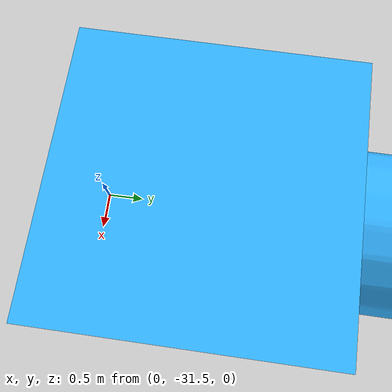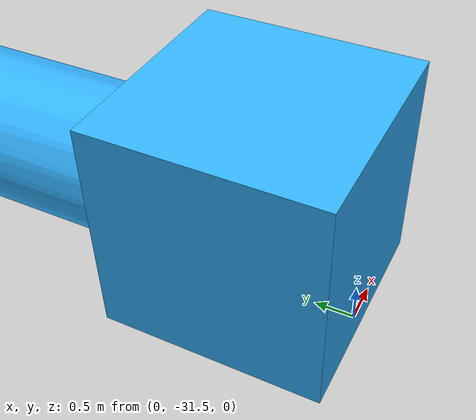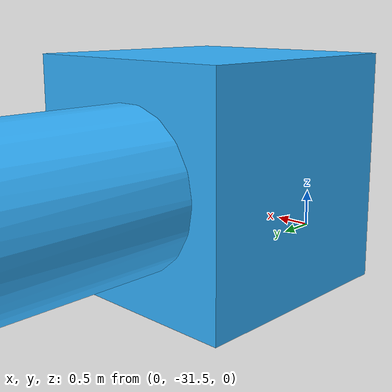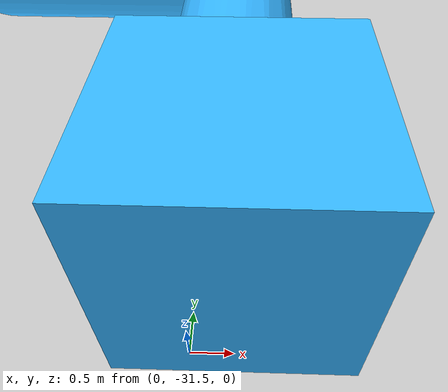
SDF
<?xml version="1.0" ?>
<sdf version="1.9">
  <model name="pipeline_system">

    <static>true</static>
    <pose>0 -20 1 1.5708 0 1.5708</pose>

    <!-- PIPE FRAME -->
    <link name="pipeline">

      <visual name="visual">
        <geometry>
          <mesh>
            <uri>meshes/pipeframe.stl</uri>
            <scale>0.01 0.01 0.01</scale>
          </mesh>
        </geometry>

        <material>
          <ambient>0 0.5 1 1</ambient>
          <diffuse>0.2 0.7 1 1</diffuse>
          <specular>0.1 0.1 0.1 1</specular>
        </material>

      </visual>

    </link>

    <!-- ANCHOR BLOCK -->
    <link name="anchor">

      <pose>-10 0 0.5 0 0 0</pose>

      <collision name="collision">
        <geometry>
          <box>
            <size>3 3 3</size>
          </box>
        </geometry>
      </collision>

      <visual name="visual">
        <geometry>
          <box>
            <size>3 3 3</size>
          </box>
        </geometry>

        <material>
          <ambient>0 0.5 1 1</ambient>
          <diffuse>0.2 0.7 1 1</diffuse>
          <specular>0.1 0.1 0.1 1</specular>
        </material>

      </visual>

    </link>

  </model>
</sdf>
